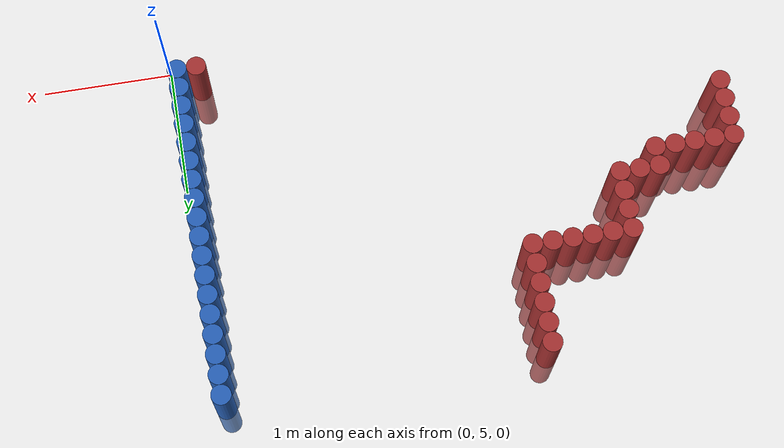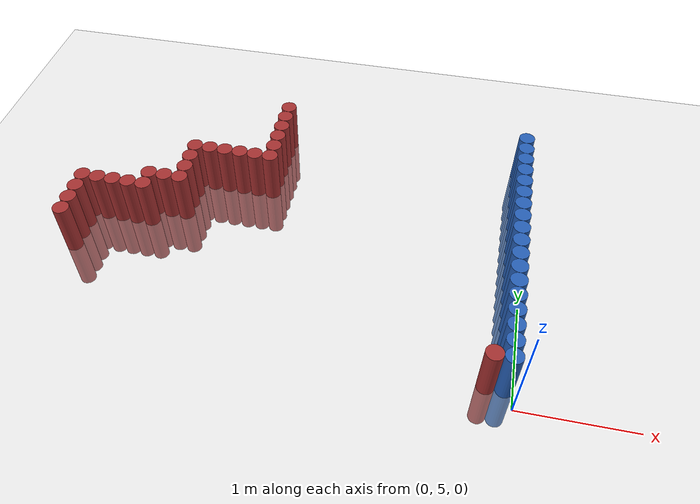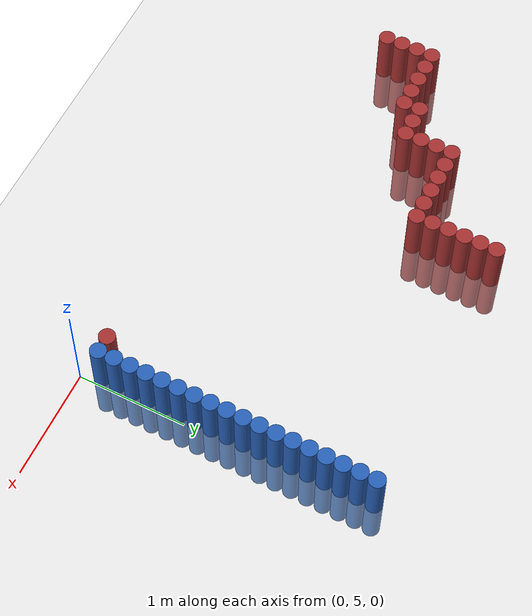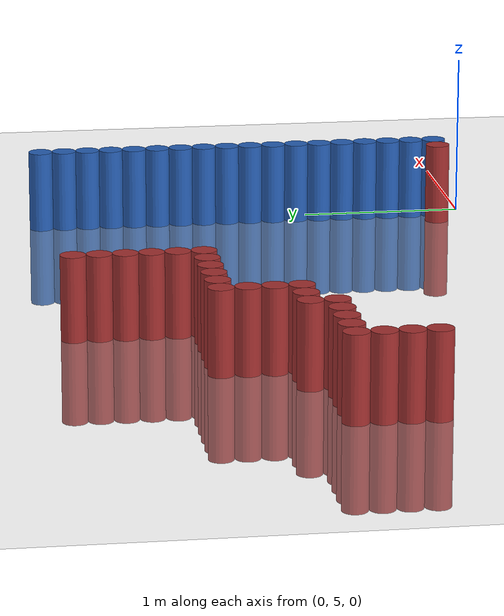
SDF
<sdf version="1.6">
 <world name="default">
  <model name="ground_plane">
   <static>1</static>
   <link name="link">
    <collision name="collision">
     <geometry><plane><normal>0 0 1</normal><size>100 100</size></plane></geometry>
     <surface><friction><ode><mu>100</mu><mu2>50</mu2></ode></friction></surface>
    </collision>
    <visual name="visual">
     <cast_shadows>0</cast_shadows>
     <geometry><plane><normal>0 0 1</normal><size>100 100</size></plane></geometry>
     <material>
      <script><uri>file://media/materials/scripts/gazebo.material</uri><name>Gazebo/Grey</name></script>
     </material>
    </visual>
   </link>
  </model>
  <model name="unit_cylinder_271">
   <static>1</static>
   <pose>-4.125000 5.925000 0.000000 0.000000 0.000000 0.000000</pose>
   <link name="link">
    <inertial>
     <mass>1</mass>
     <inertia><ixx>0.145833</ixx><ixy>0</ixy><ixz>0</ixz><iyy>0.145833</iyy><iyz>0</iyz><izz>0.125</izz></inertia>
    </inertial>
    <collision name="collision">
     <geometry><cylinder><radius>0.075000</radius><length>1</length></cylinder></geometry>
    </collision>
    <visual name="visual">
     <geometry><cylinder><radius>0.075000</radius><length>1</length></cylinder></geometry>
     <material>
      <ambient>0.648000 0.192000 0.192000 1</ambient>
      <diffuse>0.648000 0.192000 0.192000 1</diffuse>
     </material>
     <material>
      <script><name>Gazebo/Grey</name><uri>file://media/materials/scripts/gazebo.material</uri></script>
     </material>
    </visual>
   </link>
  </model>
  <model name="unit_cylinder_272">
   <static>1</static>
   <pose>-4.125000 6.075000 0.000000 0.000000 0.000000 0.000000</pose>
   <link name="link">
    <inertial>
     <mass>1</mass>
     <inertia><ixx>0.145833</ixx><ixy>0</ixy><ixz>0</ixz><iyy>0.145833</iyy><iyz>0</iyz><izz>0.125</izz></inertia>
    </inertial>
    <collision name="collision">
     <geometry><cylinder><radius>0.075000</radius><length>1</length></cylinder></geometry>
    </collision>
    <visual name="visual">
     <geometry><cylinder><radius>0.075000</radius><length>1</length></cylinder></geometry>
     <material>
      <ambient>0.648000 0.192000 0.192000 1</ambient>
      <diffuse>0.648000 0.192000 0.192000 1</diffuse>
     </material>
     <material>
      <script><name>Gazebo/Grey</name><uri>file://media/materials/scripts/gazebo.material</uri></script>
     </material>
    </visual>
   </link>
  </model>
  <model name="unit_cylinder_273">
   <static>1</static>
   <pose>-4.125000 6.225000 0.000000 0.000000 0.000000 0.000000</pose>
   <link name="link">
    <inertial>
     <mass>1</mass>
     <inertia><ixx>0.145833</ixx><ixy>0</ixy><ixz>0</ixz><iyy>0.145833</iyy><iyz>0</iyz><izz>0.125</izz></inertia>
    </inertial>
    <collision name="collision">
     <geometry><cylinder><radius>0.075000</radius><length>1</length></cylinder></geometry>
    </collision>
    <visual name="visual">
     <geometry><cylinder><radius>0.075000</radius><length>1</length></cylinder></geometry>
     <material>
      <ambient>0.648000 0.192000 0.192000 1</ambient>
      <diffuse>0.648000 0.192000 0.192000 1</diffuse>
     </material>
     <material>
      <script><name>Gazebo/Grey</name><uri>file://media/materials/scripts/gazebo.material</uri></script>
     </material>
    </visual>
   </link>
  </model>
  <model name="unit_cylinder_274">
   <static>1</static>
   <pose>-4.125000 6.375000 0.000000 0.000000 0.000000 0.000000</pose>
   <link name="link">
    <inertial>
     <mass>1</mass>
     <inertia><ixx>0.145833</ixx><ixy>0</ixy><ixz>0</ixz><iyy>0.145833</iyy><iyz>0</iyz><izz>0.125</izz></inertia>
    </inertial>
    <collision name="collision">
     <geometry><cylinder><radius>0.075000</radius><length>1</length></cylinder></geometry>
    </collision>
    <visual name="visual">
     <geometry><cylinder><radius>0.075000</radius><length>1</length></cylinder></geometry>
     <material>
      <ambient>0.648000 0.192000 0.192000 1</ambient>
      <diffuse>0.648000 0.192000 0.192000 1</diffuse>
     </material>
     <material>
      <script><name>Gazebo/Grey</name><uri>file://media/materials/scripts/gazebo.material</uri></script>
     </material>
    </visual>
   </link>
  </model>
  <model name="unit_cylinder_277">
   <static>1</static>
   <pose>-3.975000 6.375000 0.000000 0.000000 0.000000 0.000000</pose>
   <link name="link">
    <inertial>
     <mass>1</mass>
     <inertia><ixx>0.145833</ixx><ixy>0</ixy><ixz>0</ixz><iyy>0.145833</iyy><iyz>0</iyz><izz>0.125</izz></inertia>
    </inertial>
    <collision name="collision">
     <geometry><cylinder><radius>0.075000</radius><length>1</length></cylinder></geometry>
    </collision>
    <visual name="visual">
     <geometry><cylinder><radius>0.075000</radius><length>1</length></cylinder></geometry>
     <material>
      <ambient>0.648000 0.192000 0.192000 1</ambient>
      <diffuse>0.648000 0.192000 0.192000 1</diffuse>
     </material>
     <material>
      <script><name>Gazebo/Grey</name><uri>file://media/materials/scripts/gazebo.material</uri></script>
     </material>
    </visual>
   </link>
  </model>
  <model name="unit_cylinder_281">
   <static>1</static>
   <pose>-3.825000 6.375000 0.000000 0.000000 0.000000 0.000000</pose>
   <link name="link">
    <inertial>
     <mass>1</mass>
     <inertia><ixx>0.145833</ixx><ixy>0</ixy><ixz>0</ixz><iyy>0.145833</iyy><iyz>0</iyz><izz>0.125</izz></inertia>
    </inertial>
    <collision name="collision">
     <geometry><cylinder><radius>0.075000</radius><length>1</length></cylinder></geometry>
    </collision>
    <visual name="visual">
     <geometry><cylinder><radius>0.075000</radius><length>1</length></cylinder></geometry>
     <material>
      <ambient>0.648000 0.192000 0.192000 1</ambient>
      <diffuse>0.648000 0.192000 0.192000 1</diffuse>
     </material>
     <material>
      <script><name>Gazebo/Grey</name><uri>file://media/materials/scripts/gazebo.material</uri></script>
     </material>
    </visual>
   </link>
  </model>
  <model name="unit_cylinder_285">
   <static>1</static>
   <pose>-3.675000 6.375000 0.000000 0.000000 0.000000 0.000000</pose>
   <link name="link">
    <inertial>
     <mass>1</mass>
     <inertia><ixx>0.145833</ixx><ixy>0</ixy><ixz>0</ixz><iyy>0.145833</iyy><iyz>0</iyz><izz>0.125</izz></inertia>
    </inertial>
    <collision name="collision">
     <geometry><cylinder><radius>0.075000</radius><length>1</length></cylinder></geometry>
    </collision>
    <visual name="visual">
     <geometry><cylinder><radius>0.075000</radius><length>1</length></cylinder></geometry>
     <material>
      <ambient>0.648000 0.192000 0.192000 1</ambient>
      <diffuse>0.648000 0.192000 0.192000 1</diffuse>
     </material>
     <material>
      <script><name>Gazebo/Grey</name><uri>file://media/materials/scripts/gazebo.material</uri></script>
     </material>
    </visual>
   </link>
  </model>
  <model name="unit_cylinder_287">
   <static>1</static>
   <pose>-3.525000 6.375000 0.000000 0.000000 0.000000 0.000000</pose>
   <link name="link">
    <inertial>
     <mass>1</mass>
     <inertia><ixx>0.145833</ixx><ixy>0</ixy><ixz>0</ixz><iyy>0.145833</iyy><iyz>0</iyz><izz>0.125</izz></inertia>
    </inertial>
    <collision name="collision">
     <geometry><cylinder><radius>0.075000</radius><length>1</length></cylinder></geometry>
    </collision>
    <visual name="visual">
     <geometry><cylinder><radius>0.075000</radius><length>1</length></cylinder></geometry>
     <material>
      <ambient>0.648000 0.192000 0.192000 1</ambient>
      <diffuse>0.648000 0.192000 0.192000 1</diffuse>
     </material>
     <material>
      <script><name>Gazebo/Grey</name><uri>file://media/materials/scripts/gazebo.material</uri></script>
     </material>
    </visual>
   </link>
  </model>
  <model name="unit_cylinder_288">
   <static>1</static>
   <pose>-3.525000 6.525000 0.000000 0.000000 0.000000 0.000000</pose>
   <link name="link">
    <inertial>
     <mass>1</mass>
     <inertia><ixx>0.145833</ixx><ixy>0</ixy><ixz>0</ixz><iyy>0.145833</iyy><iyz>0</iyz><izz>0.125</izz></inertia>
    </inertial>
    <collision name="collision">
     <geometry><cylinder><radius>0.075000</radius><length>1</length></cylinder></geometry>
    </collision>
    <visual name="visual">
     <geometry><cylinder><radius>0.075000</radius><length>1</length></cylinder></geometry>
     <material>
      <ambient>0.648000 0.192000 0.192000 1</ambient>
      <diffuse>0.648000 0.192000 0.192000 1</diffuse>
     </material>
     <material>
      <script><name>Gazebo/Grey</name><uri>file://media/materials/scripts/gazebo.material</uri></script>
     </material>
    </visual>
   </link>
  </model>
  <model name="unit_cylinder_290">
   <static>1</static>
   <pose>-3.375000 6.525000 0.000000 0.000000 0.000000 0.000000</pose>
   <link name="link">
    <inertial>
     <mass>1</mass>
     <inertia><ixx>0.145833</ixx><ixy>0</ixy><ixz>0</ixz><iyy>0.145833</iyy><iyz>0</iyz><izz>0.125</izz></inertia>
    </inertial>
    <collision name="collision">
     <geometry><cylinder><radius>0.075000</radius><length>1</length></cylinder></geometry>
    </collision>
    <visual name="visual">
     <geometry><cylinder><radius>0.075000</radius><length>1</length></cylinder></geometry>
     <material>
      <ambient>0.648000 0.192000 0.192000 1</ambient>
      <diffuse>0.648000 0.192000 0.192000 1</diffuse>
     </material>
     <material>
      <script><name>Gazebo/Grey</name><uri>file://media/materials/scripts/gazebo.material</uri></script>
     </material>
    </visual>
   </link>
  </model>
  <model name="unit_cylinder_292">
   <static>1</static>
   <pose>-3.225000 6.525000 0.000000 0.000000 0.000000 0.000000</pose>
   <link name="link">
    <inertial>
     <mass>1</mass>
     <inertia><ixx>0.145833</ixx><ixy>0</ixy><ixz>0</ixz><iyy>0.145833</iyy><iyz>0</iyz><izz>0.125</izz></inertia>
    </inertial>
    <collision name="collision">
     <geometry><cylinder><radius>0.075000</radius><length>1</length></cylinder></geometry>
    </collision>
    <visual name="visual">
     <geometry><cylinder><radius>0.075000</radius><length>1</length></cylinder></geometry>
     <material>
      <ambient>0.648000 0.192000 0.192000 1</ambient>
      <diffuse>0.648000 0.192000 0.192000 1</diffuse>
     </material>
     <material>
      <script><name>Gazebo/Grey</name><uri>file://media/materials/scripts/gazebo.material</uri></script>
     </material>
    </visual>
   </link>
  </model>
  <model name="unit_cylinder_293">
   <static>1</static>
   <pose>-3.225000 6.675000 0.000000 0.000000 0.000000 0.000000</pose>
   <link name="link">
    <inertial>
     <mass>1</mass>
     <inertia><ixx>0.145833</ixx><ixy>0</ixy><ixz>0</ixz><iyy>0.145833</iyy><iyz>0</iyz><izz>0.125</izz></inertia>
    </inertial>
    <collision name="collision">
     <geometry><cylinder><radius>0.075000</radius><length>1</length></cylinder></geometry>
    </collision>
    <visual name="visual">
     <geometry><cylinder><radius>0.075000</radius><length>1</length></cylinder></geometry>
     <material>
      <ambient>0.648000 0.192000 0.192000 1</ambient>
      <diffuse>0.648000 0.192000 0.192000 1</diffuse>
     </material>
     <material>
      <script><name>Gazebo/Grey</name><uri>file://media/materials/scripts/gazebo.material</uri></script>
     </material>
    </visual>
   </link>
  </model>
  <model name="unit_cylinder_294">
   <static>1</static>
   <pose>-3.225000 6.825000 0.000000 0.000000 0.000000 0.000000</pose>
   <link name="link">
    <inertial>
     <mass>1</mass>
     <inertia><ixx>0.145833</ixx><ixy>0</ixy><ixz>0</ixz><iyy>0.145833</iyy><iyz>0</iyz><izz>0.125</izz></inertia>
    </inertial>
    <collision name="collision">
     <geometry><cylinder><radius>0.075000</radius><length>1</length></cylinder></geometry>
    </collision>
    <visual name="visual">
     <geometry><cylinder><radius>0.075000</radius><length>1</length></cylinder></geometry>
     <material>
      <ambient>0.648000 0.192000 0.192000 1</ambient>
      <diffuse>0.648000 0.192000 0.192000 1</diffuse>
     </material>
     <material>
      <script><name>Gazebo/Grey</name><uri>file://media/materials/scripts/gazebo.material</uri></script>
     </material>
    </visual>
   </link>
  </model>
  <model name="unit_cylinder_295">
   <static>1</static>
   <pose>-3.225000 6.975000 0.000000 0.000000 0.000000 0.000000</pose>
   <link name="link">
    <inertial>
     <mass>1</mass>
     <inertia><ixx>0.145833</ixx><ixy>0</ixy><ixz>0</ixz><iyy>0.145833</iyy><iyz>0</iyz><izz>0.125</izz></inertia>
    </inertial>
    <collision name="collision">
     <geometry><cylinder><radius>0.075000</radius><length>1</length></cylinder></geometry>
    </collision>
    <visual name="visual">
     <geometry><cylinder><radius>0.075000</radius><length>1</length></cylinder></geometry>
     <material>
      <ambient>0.648000 0.192000 0.192000 1</ambient>
      <diffuse>0.648000 0.192000 0.192000 1</diffuse>
     </material>
     <material>
      <script><name>Gazebo/Grey</name><uri>file://media/materials/scripts/gazebo.material</uri></script>
     </material>
    </visual>
   </link>
  </model>
  <model name="unit_cylinder_297">
   <static>1</static>
   <pose>-3.075000 6.975000 0.000000 0.000000 0.000000 0.000000</pose>
   <link name="link">
    <inertial>
     <mass>1</mass>
     <inertia><ixx>0.145833</ixx><ixy>0</ixy><ixz>0</ixz><iyy>0.145833</iyy><iyz>0</iyz><izz>0.125</izz></inertia>
    </inertial>
    <collision name="collision">
     <geometry><cylinder><radius>0.075000</radius><length>1</length></cylinder></geometry>
    </collision>
    <visual name="visual">
     <geometry><cylinder><radius>0.075000</radius><length>1</length></cylinder></geometry>
     <material>
      <ambient>0.648000 0.192000 0.192000 1</ambient>
      <diffuse>0.648000 0.192000 0.192000 1</diffuse>
     </material>
     <material>
      <script><name>Gazebo/Grey</name><uri>file://media/materials/scripts/gazebo.material</uri></script>
     </material>
    </visual>
   </link>
  </model>
  <model name="unit_cylinder_299">
   <static>1</static>
   <pose>-2.925000 6.975000 0.000000 0.000000 0.000000 0.000000</pose>
   <link name="link">
    <inertial>
     <mass>1</mass>
     <inertia><ixx>0.145833</ixx><ixy>0</ixy><ixz>0</ixz><iyy>0.145833</iyy><iyz>0</iyz><izz>0.125</izz></inertia>
    </inertial>
    <collision name="collision">
     <geometry><cylinder><radius>0.075000</radius><length>1</length></cylinder></geometry>
    </collision>
    <visual name="visual">
     <geometry><cylinder><radius>0.075000</radius><length>1</length></cylinder></geometry>
     <material>
      <ambient>0.648000 0.192000 0.192000 1</ambient>
      <diffuse>0.648000 0.192000 0.192000 1</diffuse>
     </material>
     <material>
      <script><name>Gazebo/Grey</name><uri>file://media/materials/scripts/gazebo.material</uri></script>
     </material>
    </visual>
   </link>
  </model>
  <model name="unit_cylinder_301">
   <static>1</static>
   <pose>-2.775000 6.975000 0.000000 0.000000 0.000000 0.000000</pose>
   <link name="link">
    <inertial>
     <mass>1</mass>
     <inertia><ixx>0.145833</ixx><ixy>0</ixy><ixz>0</ixz><iyy>0.145833</iyy><iyz>0</iyz><izz>0.125</izz></inertia>
    </inertial>
    <collision name="collision">
     <geometry><cylinder><radius>0.075000</radius><length>1</length></cylinder></geometry>
    </collision>
    <visual name="visual">
     <geometry><cylinder><radius>0.075000</radius><length>1</length></cylinder></geometry>
     <material>
      <ambient>0.648000 0.192000 0.192000 1</ambient>
      <diffuse>0.648000 0.192000 0.192000 1</diffuse>
     </material>
     <material>
      <script><name>Gazebo/Grey</name><uri>file://media/materials/scripts/gazebo.material</uri></script>
     </material>
    </visual>
   </link>
  </model>
  <model name="unit_cylinder_303">
   <static>1</static>
   <pose>-2.625000 6.975000 0.000000 0.000000 0.000000 0.000000</pose>
   <link name="link">
    <inertial>
     <mass>1</mass>
     <inertia><ixx>0.145833</ixx><ixy>0</ixy><ixz>0</ixz><iyy>0.145833</iyy><iyz>0</iyz><izz>0.125</izz></inertia>
    </inertial>
    <collision name="collision">
     <geometry><cylinder><radius>0.075000</radius><length>1</length></cylinder></geometry>
    </collision>
    <visual name="visual">
     <geometry><cylinder><radius>0.075000</radius><length>1</length></cylinder></geometry>
     <material>
      <ambient>0.648000 0.192000 0.192000 1</ambient>
      <diffuse>0.648000 0.192000 0.192000 1</diffuse>
     </material>
     <material>
      <script><name>Gazebo/Grey</name><uri>file://media/materials/scripts/gazebo.material</uri></script>
     </material>
    </visual>
   </link>
  </model>
  <model name="unit_cylinder_305">
   <static>1</static>
   <pose>-2.475000 6.975000 0.000000 0.000000 0.000000 0.000000</pose>
   <link name="link">
    <inertial>
     <mass>1</mass>
     <inertia><ixx>0.145833</ixx><ixy>0</ixy><ixz>0</ixz><iyy>0.145833</iyy><iyz>0</iyz><izz>0.125</izz></inertia>
    </inertial>
    <collision name="collision">
     <geometry><cylinder><radius>0.075000</radius><length>1</length></cylinder></geometry>
    </collision>
    <visual name="visual">
     <geometry><cylinder><radius>0.075000</radius><length>1</length></cylinder></geometry>
     <material>
      <ambient>0.648000 0.192000 0.192000 1</ambient>
      <diffuse>0.648000 0.192000 0.192000 1</diffuse>
     </material>
     <material>
      <script><name>Gazebo/Grey</name><uri>file://media/materials/scripts/gazebo.material</uri></script>
     </material>
    </visual>
   </link>
  </model>
  <model name="unit_cylinder_306">
   <static>1</static>
   <pose>-2.475000 7.125000 0.000000 0.000000 0.000000 0.000000</pose>
   <link name="link">
    <inertial>
     <mass>1</mass>
     <inertia><ixx>0.145833</ixx><ixy>0</ixy><ixz>0</ixz><iyy>0.145833</iyy><iyz>0</iyz><izz>0.125</izz></inertia>
    </inertial>
    <collision name="collision">
     <geometry><cylinder><radius>0.075000</radius><length>1</length></cylinder></geometry>
    </collision>
    <visual name="visual">
     <geometry><cylinder><radius>0.075000</radius><length>1</length></cylinder></geometry>
     <material>
      <ambient>0.648000 0.192000 0.192000 1</ambient>
      <diffuse>0.648000 0.192000 0.192000 1</diffuse>
     </material>
     <material>
      <script><name>Gazebo/Grey</name><uri>file://media/materials/scripts/gazebo.material</uri></script>
     </material>
    </visual>
   </link>
  </model>
  <model name="unit_cylinder_307">
   <static>1</static>
   <pose>-2.475000 7.275000 0.000000 0.000000 0.000000 0.000000</pose>
   <link name="link">
    <inertial>
     <mass>1</mass>
     <inertia><ixx>0.145833</ixx><ixy>0</ixy><ixz>0</ixz><iyy>0.145833</iyy><iyz>0</iyz><izz>0.125</izz></inertia>
    </inertial>
    <collision name="collision">
     <geometry><cylinder><radius>0.075000</radius><length>1</length></cylinder></geometry>
    </collision>
    <visual name="visual">
     <geometry><cylinder><radius>0.075000</radius><length>1</length></cylinder></geometry>
     <material>
      <ambient>0.648000 0.192000 0.192000 1</ambient>
      <diffuse>0.648000 0.192000 0.192000 1</diffuse>
     </material>
     <material>
      <script><name>Gazebo/Grey</name><uri>file://media/materials/scripts/gazebo.material</uri></script>
     </material>
    </visual>
   </link>
  </model>
  <model name="unit_cylinder_308">
   <static>1</static>
   <pose>-2.475000 7.425000 0.000000 0.000000 0.000000 0.000000</pose>
   <link name="link">
    <inertial>
     <mass>1</mass>
     <inertia><ixx>0.145833</ixx><ixy>0</ixy><ixz>0</ixz><iyy>0.145833</iyy><iyz>0</iyz><izz>0.125</izz></inertia>
    </inertial>
    <collision name="collision">
     <geometry><cylinder><radius>0.075000</radius><length>1</length></cylinder></geometry>
    </collision>
    <visual name="visual">
     <geometry><cylinder><radius>0.075000</radius><length>1</length></cylinder></geometry>
     <material>
      <ambient>0.648000 0.192000 0.192000 1</ambient>
      <diffuse>0.648000 0.192000 0.192000 1</diffuse>
     </material>
     <material>
      <script><name>Gazebo/Grey</name><uri>file://media/materials/scripts/gazebo.material</uri></script>
     </material>
    </visual>
   </link>
  </model>
  <model name="unit_cylinder_309">
   <static>1</static>
   <pose>-2.475000 7.575000 0.000000 0.000000 0.000000 0.000000</pose>
   <link name="link">
    <inertial>
     <mass>1</mass>
     <inertia><ixx>0.145833</ixx><ixy>0</ixy><ixz>0</ixz><iyy>0.145833</iyy><iyz>0</iyz><izz>0.125</izz></inertia>
    </inertial>
    <collision name="collision">
     <geometry><cylinder><radius>0.075000</radius><length>1</length></cylinder></geometry>
    </collision>
    <visual name="visual">
     <geometry><cylinder><radius>0.075000</radius><length>1</length></cylinder></geometry>
     <material>
      <ambient>0.648000 0.192000 0.192000 1</ambient>
      <diffuse>0.648000 0.192000 0.192000 1</diffuse>
     </material>
     <material>
      <script><name>Gazebo/Grey</name><uri>file://media/materials/scripts/gazebo.material</uri></script>
     </material>
    </visual>
   </link>
  </model>
  <model name="unit_cylinder_310">
   <static>1</static>
   <pose>-2.475000 7.725000 0.000000 0.000000 0.000000 0.000000</pose>
   <link name="link">
    <inertial>
     <mass>1</mass>
     <inertia><ixx>0.145833</ixx><ixy>0</ixy><ixz>0</ixz><iyy>0.145833</iyy><iyz>0</iyz><izz>0.125</izz></inertia>
    </inertial>
    <collision name="collision">
     <geometry><cylinder><radius>0.075000</radius><length>1</length></cylinder></geometry>
    </collision>
    <visual name="visual">
     <geometry><cylinder><radius>0.075000</radius><length>1</length></cylinder></geometry>
     <material>
      <ambient>0.648000 0.192000 0.192000 1</ambient>
      <diffuse>0.648000 0.192000 0.192000 1</diffuse>
     </material>
     <material>
      <script><name>Gazebo/Grey</name><uri>file://media/materials/scripts/gazebo.material</uri></script>
     </material>
    </visual>
   </link>
  </model>
  <model name="unit_cylinder_351">
   <static>1</static>
   <pose>-0.225000 5.175000 0.000000 0.000000 0.000000 0.000000</pose>
   <link name="link">
    <inertial>
     <mass>1</mass>
     <inertia><ixx>0.145833</ixx><ixy>0</ixy><ixz>0</ixz><iyy>0.145833</iyy><iyz>0</iyz><izz>0.125</izz></inertia>
    </inertial>
    <collision name="collision">
     <geometry><cylinder><radius>0.075000</radius><length>1</length></cylinder></geometry>
    </collision>
    <visual name="visual">
     <geometry><cylinder><radius>0.075000</radius><length>1</length></cylinder></geometry>
     <material>
      <ambient>0.648000 0.192000 0.192000 1</ambient>
      <diffuse>0.648000 0.192000 0.192000 1</diffuse>
     </material>
     <material>
      <script><name>Gazebo/Grey</name><uri>file://media/materials/scripts/gazebo.material</uri></script>
     </material>
    </visual>
   </link>
  </model>
  <model name="unit_cylinder_353">
   <static>1</static>
   <pose>-0.075000 5.175000 0.000000 0.000000 0.000000 0.000000</pose>
   <link name="link">
    <inertial>
     <mass>1</mass>
     <inertia><ixx>0.145833</ixx><ixy>0</ixy><ixz>0</ixz><iyy>0.145833</iyy><iyz>0</iyz><izz>0.125</izz></inertia>
    </inertial>
    <collision name="collision">
     <geometry><cylinder><radius>0.075000</radius><length>1</length></cylinder></geometry>
    </collision>
    <visual name="visual">
     <geometry><cylinder><radius>0.075000</radius><length>1</length></cylinder></geometry>
     <material>
      <ambient>0.152000 0.379000 0.720000 1</ambient>
      <diffuse>0.152000 0.379000 0.720000 1</diffuse>
     </material>
     <material>
      <script><name>Gazebo/Grey</name><uri>file://media/materials/scripts/gazebo.material</uri></script>
     </material>
    </visual>
   </link>
  </model>
  <model name="unit_cylinder_354">
   <static>1</static>
   <pose>-0.075000 5.325000 0.000000 0.000000 0.000000 0.000000</pose>
   <link name="link">
    <inertial>
     <mass>1</mass>
     <inertia><ixx>0.145833</ixx><ixy>0</ixy><ixz>0</ixz><iyy>0.145833</iyy><iyz>0</iyz><izz>0.125</izz></inertia>
    </inertial>
    <collision name="collision">
     <geometry><cylinder><radius>0.075000</radius><length>1</length></cylinder></geometry>
    </collision>
    <visual name="visual">
     <geometry><cylinder><radius>0.075000</radius><length>1</length></cylinder></geometry>
     <material>
      <ambient>0.152000 0.379000 0.720000 1</ambient>
      <diffuse>0.152000 0.379000 0.720000 1</diffuse>
     </material>
     <material>
      <script><name>Gazebo/Grey</name><uri>file://media/materials/scripts/gazebo.material</uri></script>
     </material>
    </visual>
   </link>
  </model>
  <model name="unit_cylinder_355">
   <static>1</static>
   <pose>-0.075000 5.475000 0.000000 0.000000 0.000000 0.000000</pose>
   <link name="link">
    <inertial>
     <mass>1</mass>
     <inertia><ixx>0.145833</ixx><ixy>0</ixy><ixz>0</ixz><iyy>0.145833</iyy><iyz>0</iyz><izz>0.125</izz></inertia>
    </inertial>
    <collision name="collision">
     <geometry><cylinder><radius>0.075000</radius><length>1</length></cylinder></geometry>
    </collision>
    <visual name="visual">
     <geometry><cylinder><radius>0.075000</radius><length>1</length></cylinder></geometry>
     <material>
      <ambient>0.152000 0.379000 0.720000 1</ambient>
      <diffuse>0.152000 0.379000 0.720000 1</diffuse>
     </material>
     <material>
      <script><name>Gazebo/Grey</name><uri>file://media/materials/scripts/gazebo.material</uri></script>
     </material>
    </visual>
   </link>
  </model>
  <model name="unit_cylinder_356">
   <static>1</static>
   <pose>-0.075000 5.625000 0.000000 0.000000 0.000000 0.000000</pose>
   <link name="link">
    <inertial>
     <mass>1</mass>
     <inertia><ixx>0.145833</ixx><ixy>0</ixy><ixz>0</ixz><iyy>0.145833</iyy><iyz>0</iyz><izz>0.125</izz></inertia>
    </inertial>
    <collision name="collision">
     <geometry><cylinder><radius>0.075000</radius><length>1</length></cylinder></geometry>
    </collision>
    <visual name="visual">
     <geometry><cylinder><radius>0.075000</radius><length>1</length></cylinder></geometry>
     <material>
      <ambient>0.152000 0.379000 0.720000 1</ambient>
      <diffuse>0.152000 0.379000 0.720000 1</diffuse>
     </material>
     <material>
      <script><name>Gazebo/Grey</name><uri>file://media/materials/scripts/gazebo.material</uri></script>
     </material>
    </visual>
   </link>
  </model>
  <model name="unit_cylinder_357">
   <static>1</static>
   <pose>-0.075000 5.775000 0.000000 0.000000 0.000000 0.000000</pose>
   <link name="link">
    <inertial>
     <mass>1</mass>
     <inertia><ixx>0.145833</ixx><ixy>0</ixy><ixz>0</ixz><iyy>0.145833</iyy><iyz>0</iyz><izz>0.125</izz></inertia>
    </inertial>
    <collision name="collision">
     <geometry><cylinder><radius>0.075000</radius><length>1</length></cylinder></geometry>
    </collision>
    <visual name="visual">
     <geometry><cylinder><radius>0.075000</radius><length>1</length></cylinder></geometry>
     <material>
      <ambient>0.152000 0.379000 0.720000 1</ambient>
      <diffuse>0.152000 0.379000 0.720000 1</diffuse>
     </material>
     <material>
      <script><name>Gazebo/Grey</name><uri>file://media/materials/scripts/gazebo.material</uri></script>
     </material>
    </visual>
   </link>
  </model>
  <model name="unit_cylinder_358">
   <static>1</static>
   <pose>-0.075000 5.925000 0.000000 0.000000 0.000000 0.000000</pose>
   <link name="link">
    <inertial>
     <mass>1</mass>
     <inertia><ixx>0.145833</ixx><ixy>0</ixy><ixz>0</ixz><iyy>0.145833</iyy><iyz>0</iyz><izz>0.125</izz></inertia>
    </inertial>
    <collision name="collision">
     <geometry><cylinder><radius>0.075000</radius><length>1</length></cylinder></geometry>
    </collision>
    <visual name="visual">
     <geometry><cylinder><radius>0.075000</radius><length>1</length></cylinder></geometry>
     <material>
      <ambient>0.152000 0.379000 0.720000 1</ambient>
      <diffuse>0.152000 0.379000 0.720000 1</diffuse>
     </material>
     <material>
      <script><name>Gazebo/Grey</name><uri>file://media/materials/scripts/gazebo.material</uri></script>
     </material>
    </visual>
   </link>
  </model>
  <model name="unit_cylinder_359">
   <static>1</static>
   <pose>-0.075000 6.075000 0.000000 0.000000 0.000000 0.000000</pose>
   <link name="link">
    <inertial>
     <mass>1</mass>
     <inertia><ixx>0.145833</ixx><ixy>0</ixy><ixz>0</ixz><iyy>0.145833</iyy><iyz>0</iyz><izz>0.125</izz></inertia>
    </inertial>
    <collision name="collision">
     <geometry><cylinder><radius>0.075000</radius><length>1</length></cylinder></geometry>
    </collision>
    <visual name="visual">
     <geometry><cylinder><radius>0.075000</radius><length>1</length></cylinder></geometry>
     <material>
      <ambient>0.152000 0.379000 0.720000 1</ambient>
      <diffuse>0.152000 0.379000 0.720000 1</diffuse>
     </material>
     <material>
      <script><name>Gazebo/Grey</name><uri>file://media/materials/scripts/gazebo.material</uri></script>
     </material>
    </visual>
   </link>
  </model>
  <model name="unit_cylinder_360">
   <static>1</static>
   <pose>-0.075000 6.225000 0.000000 0.000000 0.000000 0.000000</pose>
   <link name="link">
    <inertial>
     <mass>1</mass>
     <inertia><ixx>0.145833</ixx><ixy>0</ixy><ixz>0</ixz><iyy>0.145833</iyy><iyz>0</iyz><izz>0.125</izz></inertia>
    </inertial>
    <collision name="collision">
     <geometry><cylinder><radius>0.075000</radius><length>1</length></cylinder></geometry>
    </collision>
    <visual name="visual">
     <geometry><cylinder><radius>0.075000</radius><length>1</length></cylinder></geometry>
     <material>
      <ambient>0.152000 0.379000 0.720000 1</ambient>
      <diffuse>0.152000 0.379000 0.720000 1</diffuse>
     </material>
     <material>
      <script><name>Gazebo/Grey</name><uri>file://media/materials/scripts/gazebo.material</uri></script>
     </material>
    </visual>
   </link>
  </model>
  <model name="unit_cylinder_361">
   <static>1</static>
   <pose>-0.075000 6.375000 0.000000 0.000000 0.000000 0.000000</pose>
   <link name="link">
    <inertial>
     <mass>1</mass>
     <inertia><ixx>0.145833</ixx><ixy>0</ixy><ixz>0</ixz><iyy>0.145833</iyy><iyz>0</iyz><izz>0.125</izz></inertia>
    </inertial>
    <collision name="collision">
     <geometry><cylinder><radius>0.075000</radius><length>1</length></cylinder></geometry>
    </collision>
    <visual name="visual">
     <geometry><cylinder><radius>0.075000</radius><length>1</length></cylinder></geometry>
     <material>
      <ambient>0.152000 0.379000 0.720000 1</ambient>
      <diffuse>0.152000 0.379000 0.720000 1</diffuse>
     </material>
     <material>
      <script><name>Gazebo/Grey</name><uri>file://media/materials/scripts/gazebo.material</uri></script>
     </material>
    </visual>
   </link>
  </model>
  <model name="unit_cylinder_362">
   <static>1</static>
   <pose>-0.075000 6.525000 0.000000 0.000000 0.000000 0.000000</pose>
   <link name="link">
    <inertial>
     <mass>1</mass>
     <inertia><ixx>0.145833</ixx><ixy>0</ixy><ixz>0</ixz><iyy>0.145833</iyy><iyz>0</iyz><izz>0.125</izz></inertia>
    </inertial>
    <collision name="collision">
     <geometry><cylinder><radius>0.075000</radius><length>1</length></cylinder></geometry>
    </collision>
    <visual name="visual">
     <geometry><cylinder><radius>0.075000</radius><length>1</length></cylinder></geometry>
     <material>
      <ambient>0.152000 0.379000 0.720000 1</ambient>
      <diffuse>0.152000 0.379000 0.720000 1</diffuse>
     </material>
     <material>
      <script><name>Gazebo/Grey</name><uri>file://media/materials/scripts/gazebo.material</uri></script>
     </material>
    </visual>
   </link>
  </model>
  <model name="unit_cylinder_363">
   <static>1</static>
   <pose>-0.075000 6.675000 0.000000 0.000000 0.000000 0.000000</pose>
   <link name="link">
    <inertial>
     <mass>1</mass>
     <inertia><ixx>0.145833</ixx><ixy>0</ixy><ixz>0</ixz><iyy>0.145833</iyy><iyz>0</iyz><izz>0.125</izz></inertia>
    </inertial>
    <collision name="collision">
     <geometry><cylinder><radius>0.075000</radius><length>1</length></cylinder></geometry>
    </collision>
    <visual name="visual">
     <geometry><cylinder><radius>0.075000</radius><length>1</length></cylinder></geometry>
     <material>
      <ambient>0.152000 0.379000 0.720000 1</ambient>
      <diffuse>0.152000 0.379000 0.720000 1</diffuse>
     </material>
     <material>
      <script><name>Gazebo/Grey</name><uri>file://media/materials/scripts/gazebo.material</uri></script>
     </material>
    </visual>
   </link>
  </model>
  <model name="unit_cylinder_364">
   <static>1</static>
   <pose>-0.075000 6.825000 0.000000 0.000000 0.000000 0.000000</pose>
   <link name="link">
    <inertial>
     <mass>1</mass>
     <inertia><ixx>0.145833</ixx><ixy>0</ixy><ixz>0</ixz><iyy>0.145833</iyy><iyz>0</iyz><izz>0.125</izz></inertia>
    </inertial>
    <collision name="collision">
     <geometry><cylinder><radius>0.075000</radius><length>1</length></cylinder></geometry>
    </collision>
    <visual name="visual">
     <geometry><cylinder><radius>0.075000</radius><length>1</length></cylinder></geometry>
     <material>
      <ambient>0.152000 0.379000 0.720000 1</ambient>
      <diffuse>0.152000 0.379000 0.720000 1</diffuse>
     </material>
     <material>
      <script><name>Gazebo/Grey</name><uri>file://media/materials/scripts/gazebo.material</uri></script>
     </material>
    </visual>
   </link>
  </model>
  <model name="unit_cylinder_365">
   <static>1</static>
   <pose>-0.075000 6.975000 0.000000 0.000000 0.000000 0.000000</pose>
   <link name="link">
    <inertial>
     <mass>1</mass>
     <inertia><ixx>0.145833</ixx><ixy>0</ixy><ixz>0</ixz><iyy>0.145833</iyy><iyz>0</iyz><izz>0.125</izz></inertia>
    </inertial>
    <collision name="collision">
     <geometry><cylinder><radius>0.075000</radius><length>1</length></cylinder></geometry>
    </collision>
    <visual name="visual">
     <geometry><cylinder><radius>0.075000</radius><length>1</length></cylinder></geometry>
     <material>
      <ambient>0.152000 0.379000 0.720000 1</ambient>
      <diffuse>0.152000 0.379000 0.720000 1</diffuse>
     </material>
     <material>
      <script><name>Gazebo/Grey</name><uri>file://media/materials/scripts/gazebo.material</uri></script>
     </material>
    </visual>
   </link>
  </model>
  <model name="unit_cylinder_366">
   <static>1</static>
   <pose>-0.075000 7.125000 0.000000 0.000000 0.000000 0.000000</pose>
   <link name="link">
    <inertial>
     <mass>1</mass>
     <inertia><ixx>0.145833</ixx><ixy>0</ixy><ixz>0</ixz><iyy>0.145833</iyy><iyz>0</iyz><izz>0.125</izz></inertia>
    </inertial>
    <collision name="collision">
     <geometry><cylinder><radius>0.075000</radius><length>1</length></cylinder></geometry>
    </collision>
    <visual name="visual">
     <geometry><cylinder><radius>0.075000</radius><length>1</length></cylinder></geometry>
     <material>
      <ambient>0.152000 0.379000 0.720000 1</ambient>
      <diffuse>0.152000 0.379000 0.720000 1</diffuse>
     </material>
     <material>
      <script><name>Gazebo/Grey</name><uri>file://media/materials/scripts/gazebo.material</uri></script>
     </material>
    </visual>
   </link>
  </model>
  <model name="unit_cylinder_367">
   <static>1</static>
   <pose>-0.075000 7.275000 0.000000 0.000000 0.000000 0.000000</pose>
   <link name="link">
    <inertial>
     <mass>1</mass>
     <inertia><ixx>0.145833</ixx><ixy>0</ixy><ixz>0</ixz><iyy>0.145833</iyy><iyz>0</iyz><izz>0.125</izz></inertia>
    </inertial>
    <collision name="collision">
     <geometry><cylinder><radius>0.075000</radius><length>1</length></cylinder></geometry>
    </collision>
    <visual name="visual">
     <geometry><cylinder><radius>0.075000</radius><length>1</length></cylinder></geometry>
     <material>
      <ambient>0.152000 0.379000 0.720000 1</ambient>
      <diffuse>0.152000 0.379000 0.720000 1</diffuse>
     </material>
     <material>
      <script><name>Gazebo/Grey</name><uri>file://media/materials/scripts/gazebo.material</uri></script>
     </material>
    </visual>
   </link>
  </model>
  <model name="unit_cylinder_368">
   <static>1</static>
   <pose>-0.075000 7.425000 0.000000 0.000000 0.000000 0.000000</pose>
   <link name="link">
    <inertial>
     <mass>1</mass>
     <inertia><ixx>0.145833</ixx><ixy>0</ixy><ixz>0</ixz><iyy>0.145833</iyy><iyz>0</iyz><izz>0.125</izz></inertia>
    </inertial>
    <collision name="collision">
     <geometry><cylinder><radius>0.075000</radius><length>1</length></cylinder></geometry>
    </collision>
    <visual name="visual">
     <geometry><cylinder><radius>0.075000</radius><length>1</length></cylinder></geometry>
     <material>
      <ambient>0.152000 0.379000 0.720000 1</ambient>
      <diffuse>0.152000 0.379000 0.720000 1</diffuse>
     </material>
     <material>
      <script><name>Gazebo/Grey</name><uri>file://media/materials/scripts/gazebo.material</uri></script>
     </material>
    </visual>
   </link>
  </model>
  <model name="unit_cylinder_369">
   <static>1</static>
   <pose>-0.075000 7.575000 0.000000 0.000000 0.000000 0.000000</pose>
   <link name="link">
    <inertial>
     <mass>1</mass>
     <inertia><ixx>0.145833</ixx><ixy>0</ixy><ixz>0</ixz><iyy>0.145833</iyy><iyz>0</iyz><izz>0.125</izz></inertia>
    </inertial>
    <collision name="collision">
     <geometry><cylinder><radius>0.075000</radius><length>1</length></cylinder></geometry>
    </collision>
    <visual name="visual">
     <geometry><cylinder><radius>0.075000</radius><length>1</length></cylinder></geometry>
     <material>
      <ambient>0.152000 0.379000 0.720000 1</ambient>
      <diffuse>0.152000 0.379000 0.720000 1</diffuse>
     </material>
     <material>
      <script><name>Gazebo/Grey</name><uri>file://media/materials/scripts/gazebo.material</uri></script>
     </material>
    </visual>
   </link>
  </model>
  <model name="unit_cylinder_370">
   <static>1</static>
   <pose>-0.075000 7.725000 0.000000 0.000000 0.000000 0.000000</pose>
   <link name="link">
    <inertial>
     <mass>1</mass>
     <inertia><ixx>0.145833</ixx><ixy>0</ixy><ixz>0</ixz><iyy>0.145833</iyy><iyz>0</iyz><izz>0.125</izz></inertia>
    </inertial>
    <collision name="collision">
     <geometry><cylinder><radius>0.075000</radius><length>1</length></cylinder></geometry>
    </collision>
    <visual name="visual">
     <geometry><cylinder><radius>0.075000</radius><length>1</length></cylinder></geometry>
     <material>
      <ambient>0.152000 0.379000 0.720000 1</ambient>
      <diffuse>0.152000 0.379000 0.720000 1</diffuse>
     </material>
     <material>
      <script><name>Gazebo/Grey</name><uri>file://media/materials/scripts/gazebo.material</uri></script>
     </material>
    </visual>
   </link>
  </model>
 </world>
</sdf>
